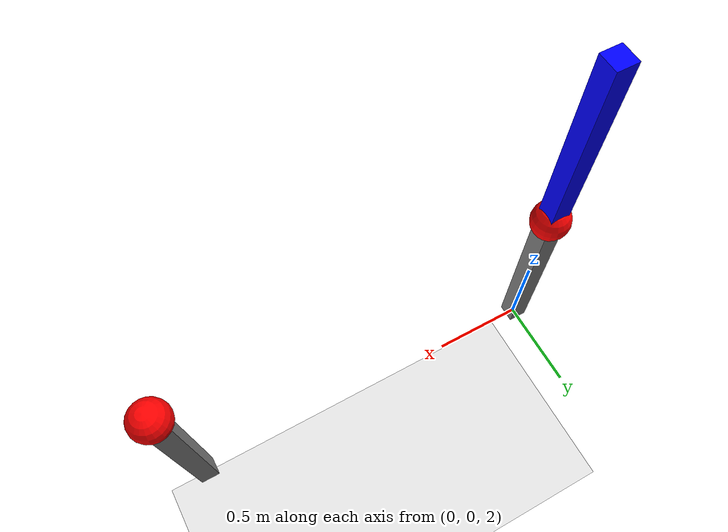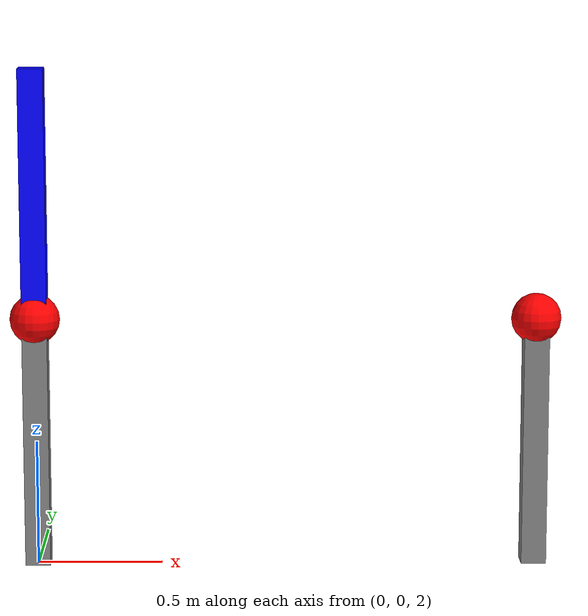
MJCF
<!-- This is a MuJoCo xml file  -->
<mujoco model="inverted_pendulum">

    <visual>
        <global azimuth="180" elevation="-20"/>
        <headlight ambient="0.3 0.3 0.3" diffuse="0.6 0.6 0.6" specular="0 0 0"/>
    </visual>

    <worldbody>
        <light pos="0 0 1"/>
        <geom type="plane" size="5 5 0.1" rgba="0.9 0.9 0.9 0.3"/>
        <body name="link1" pos="0 0 2">
            <inertial pos="0 0 0.5" mass="4" fullinertia="1 1 1 0 0 0"/>
            <geom type="box" size="0.05 0.05 0.5" pos="0 0 0.5" euler="0 0 0"/>
            <joint name="joint1" type="hinge" axis="0 -1 0"/>
            <site name="tip1" size="0.1" pos="0 0 1" rgba="1 0 0 1"/>
            <body name="link2" pos="0 0 1">
                <geom type="box" size="0.05 0.05 0.5" pos="0 0 0.5" rgba="0 0 1 1"/>
                <joint name="joint2" type="hinge" axis="0 -1 0"/>
            </body>
        </body>
        <body name="link3" pos="2 0 2">
            <geom type="box" size="0.05 0.05 0.5" pos="0 0 0.5" euler="0 0 0"/>
            <joint name="joint3" type="hinge" axis="0 -1 0"/>
            <site name="tip3" size="0.1" pos="0 0 1" rgba="1 0 0 1"/>
        </body>
    </worldbody>

</mujoco>
